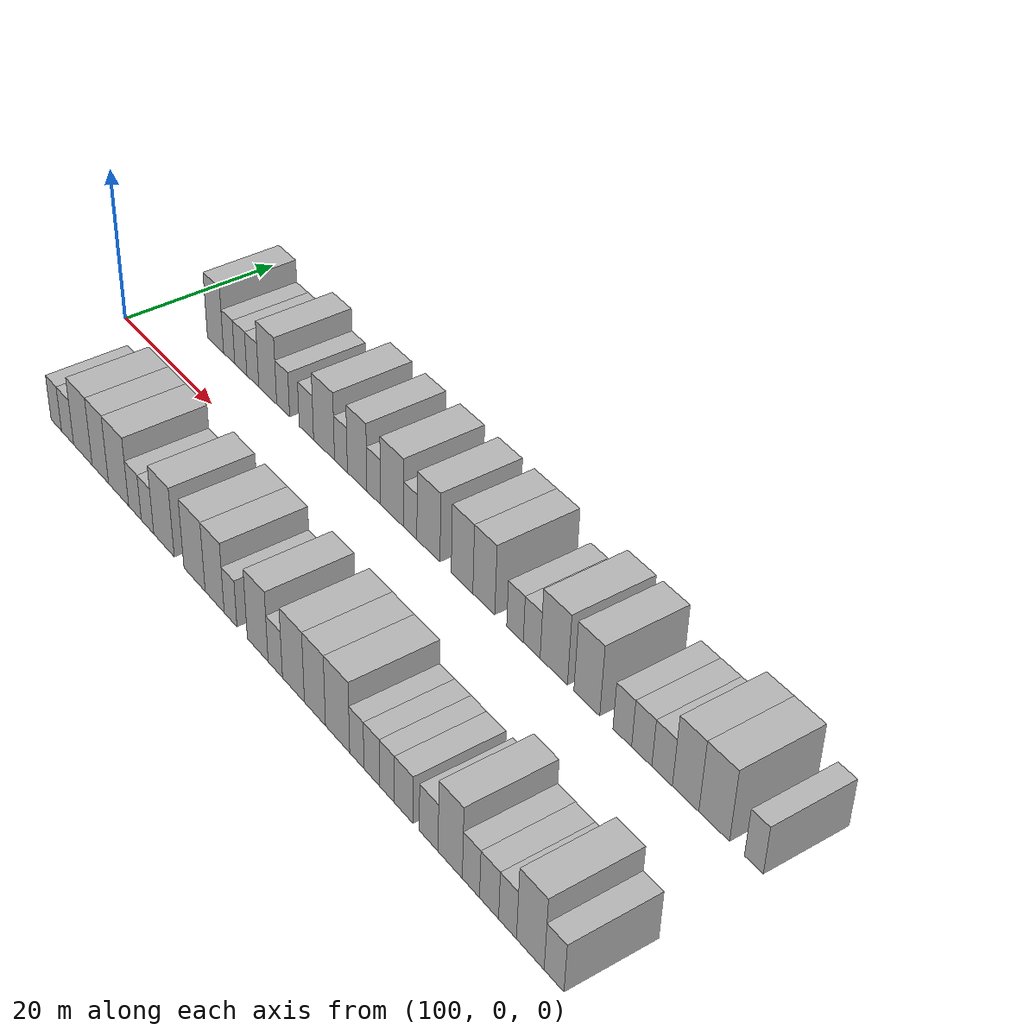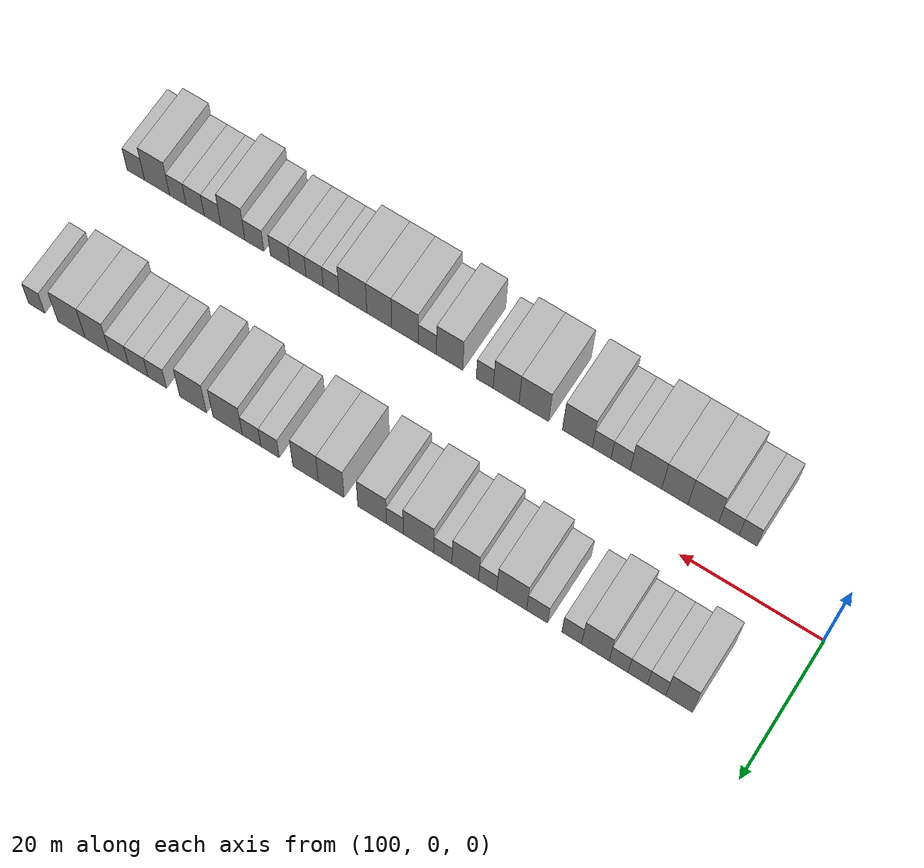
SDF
<sdf version="1.6">
 <world name="default">
  <model name="building_27">
   <static>1</static>
   <pose>110.5554 11.0000 0 0.000000 0.000000 1.570796</pose>
   <link name="link">
    <pose>0 0 4.50 0 0 0</pose>
    <collision name="collision"><geometry><box><size>10.0000 3.6886 9.0000</size></box></geometry></collision>
    <visual name="visual">
     <cast_shadows>0</cast_shadows>
     <geometry><box><size>10.0000 3.6886 9.0000</size></box></geometry>
     <material>
      <script>
       <uri>model://HANNAS_wall/materials/scripts</uri>
       <uri>model://HANNAS_wall/materials/textures</uri>
       <name>vrc/HANNAS_wall</name>
      </script>
     </material>
    </visual>
   </link>
  </model>
  <model name="building_28">
   <static>1</static>
   <pose>113.6621 11.0000 0 0.000000 0.000000 1.570796</pose>
   <link name="link">
    <pose>0 0 3.00 0 0 0</pose>
    <collision name="collision"><geometry><box><size>10.0000 2.5249 6.0000</size></box></geometry></collision>
    <visual name="visual">
     <cast_shadows>0</cast_shadows>
     <geometry><box><size>10.0000 2.5249 6.0000</size></box></geometry>
     <material>
      <script>
       <uri>model://HANNAS_wall/materials/scripts</uri>
       <uri>model://HANNAS_wall/materials/textures</uri>
       <name>vrc/HANNAS_wall</name>
      </script>
     </material>
    </visual>
   </link>
  </model>
  <model name="building_29">
   <static>1</static>
   <pose>116.2652 11.0000 0 0.000000 0.000000 1.570796</pose>
   <link name="link">
    <pose>0 0 3.00 0 0 0</pose>
    <collision name="collision"><geometry><box><size>10.0000 2.6814 6.0000</size></box></geometry></collision>
    <visual name="visual">
     <cast_shadows>0</cast_shadows>
     <geometry><box><size>10.0000 2.6814 6.0000</size></box></geometry>
     <material>
      <script>
       <uri>model://HANNAS_wall/materials/scripts</uri>
       <uri>model://HANNAS_wall/materials/textures</uri>
       <name>vrc/HANNAS_wall</name>
      </script>
     </material>
    </visual>
   </link>
  </model>
  <model name="building_30">
   <static>1</static>
   <pose>118.9211 11.0000 0 0.000000 0.000000 1.570796</pose>
   <link name="link">
    <pose>0 0 3.00 0 0 0</pose>
    <collision name="collision"><geometry><box><size>10.0000 2.6303 6.0000</size></box></geometry></collision>
    <visual name="visual">
     <cast_shadows>0</cast_shadows>
     <geometry><box><size>10.0000 2.6303 6.0000</size></box></geometry>
     <material>
      <script>
       <uri>model://HANNAS_wall/materials/scripts</uri>
       <uri>model://HANNAS_wall/materials/textures</uri>
       <name>vrc/HANNAS_wall</name>
      </script>
     </material>
    </visual>
   </link>
  </model>
  <model name="building_31">
   <static>1</static>
   <pose>122.1619 11.0000 0 0.000000 0.000000 1.570796</pose>
   <link name="link">
    <pose>0 0 4.50 0 0 0</pose>
    <collision name="collision"><geometry><box><size>10.0000 3.8514 9.0000</size></box></geometry></collision>
    <visual name="visual">
     <cast_shadows>0</cast_shadows>
     <geometry><box><size>10.0000 3.8514 9.0000</size></box></geometry>
     <material>
      <script>
       <uri>model://HANNAS_wall/materials/scripts</uri>
       <uri>model://HANNAS_wall/materials/textures</uri>
       <name>vrc/HANNAS_wall</name>
      </script>
     </material>
    </visual>
   </link>
  </model>
  <model name="building_32">
   <static>1</static>
   <pose>125.4590 11.0000 0 0.000000 0.000000 1.570796</pose>
   <link name="link">
    <pose>0 0 3.00 0 0 0</pose>
    <collision name="collision"><geometry><box><size>10.0000 2.7426 6.0000</size></box></geometry></collision>
    <visual name="visual">
     <cast_shadows>0</cast_shadows>
     <geometry><box><size>10.0000 2.7426 6.0000</size></box></geometry>
     <material>
      <script>
       <uri>model://HANNAS_wall/materials/scripts</uri>
       <uri>model://HANNAS_wall/materials/textures</uri>
       <name>vrc/HANNAS_wall</name>
      </script>
     </material>
    </visual>
   </link>
  </model>
  <model name="building_33">
   <static>1</static>
   <pose>130.3194 11.0000 0 0.000000 0.000000 1.570796</pose>
   <link name="link">
    <pose>0 0 3.00 0 0 0</pose>
    <collision name="collision"><geometry><box><size>10.0000 2.9783 6.0000</size></box></geometry></collision>
    <visual name="visual">
     <cast_shadows>0</cast_shadows>
     <geometry><box><size>10.0000 2.9783 6.0000</size></box></geometry>
     <material>
      <script>
       <uri>model://HANNAS_wall/materials/scripts</uri>
       <uri>model://HANNAS_wall/materials/textures</uri>
       <name>vrc/HANNAS_wall</name>
      </script>
     </material>
    </visual>
   </link>
  </model>
  <model name="building_34">
   <static>1</static>
   <pose>133.9288 11.0000 0 0.000000 0.000000 1.570796</pose>
   <link name="link">
    <pose>0 0 4.50 0 0 0</pose>
    <collision name="collision"><geometry><box><size>10.0000 4.2404 9.0000</size></box></geometry></collision>
    <visual name="visual">
     <cast_shadows>0</cast_shadows>
     <geometry><box><size>10.0000 4.2404 9.0000</size></box></geometry>
     <material>
      <script>
       <uri>model://HANNAS_wall/materials/scripts</uri>
       <uri>model://HANNAS_wall/materials/textures</uri>
       <name>vrc/HANNAS_wall</name>
      </script>
     </material>
    </visual>
   </link>
  </model>
  <model name="building_35">
   <static>1</static>
   <pose>137.3306 11.0000 0 0.000000 0.000000 1.570796</pose>
   <link name="link">
    <pose>0 0 3.00 0 0 0</pose>
    <collision name="collision"><geometry><box><size>10.0000 2.5633 6.0000</size></box></geometry></collision>
    <visual name="visual">
     <cast_shadows>0</cast_shadows>
     <geometry><box><size>10.0000 2.5633 6.0000</size></box></geometry>
     <material>
      <script>
       <uri>model://HANNAS_wall/materials/scripts</uri>
       <uri>model://HANNAS_wall/materials/textures</uri>
       <name>vrc/HANNAS_wall</name>
      </script>
     </material>
    </visual>
   </link>
  </model>
  <model name="building_36">
   <static>1</static>
   <pose>140.5159 11.0000 0 0.000000 0.000000 1.570796</pose>
   <link name="link">
    <pose>0 0 4.50 0 0 0</pose>
    <collision name="collision"><geometry><box><size>10.0000 3.8072 9.0000</size></box></geometry></collision>
    <visual name="visual">
     <cast_shadows>0</cast_shadows>
     <geometry><box><size>10.0000 3.8072 9.0000</size></box></geometry>
     <material>
      <script>
       <uri>model://HANNAS_wall/materials/scripts</uri>
       <uri>model://HANNAS_wall/materials/textures</uri>
       <name>vrc/HANNAS_wall</name>
      </script>
     </material>
    </visual>
   </link>
  </model>
  <model name="building_37">
   <static>1</static>
   <pose>143.7232 11.0000 0 0.000000 0.000000 1.570796</pose>
   <link name="link">
    <pose>0 0 3.00 0 0 0</pose>
    <collision name="collision"><geometry><box><size>10.0000 2.6073 6.0000</size></box></geometry></collision>
    <visual name="visual">
     <cast_shadows>0</cast_shadows>
     <geometry><box><size>10.0000 2.6073 6.0000</size></box></geometry>
     <material>
      <script>
       <uri>model://HANNAS_wall/materials/scripts</uri>
       <uri>model://HANNAS_wall/materials/textures</uri>
       <name>vrc/HANNAS_wall</name>
      </script>
     </material>
    </visual>
   </link>
  </model>
  <model name="building_38">
   <static>1</static>
   <pose>147.2224 11.0000 0 0.000000 0.000000 1.570796</pose>
   <link name="link">
    <pose>0 0 4.50 0 0 0</pose>
    <collision name="collision"><geometry><box><size>10.0000 4.3911 9.0000</size></box></geometry></collision>
    <visual name="visual">
     <cast_shadows>0</cast_shadows>
     <geometry><box><size>10.0000 4.3911 9.0000</size></box></geometry>
     <material>
      <script>
       <uri>model://HANNAS_wall/materials/scripts</uri>
       <uri>model://HANNAS_wall/materials/textures</uri>
       <name>vrc/HANNAS_wall</name>
      </script>
     </material>
    </visual>
   </link>
  </model>
  <model name="building_39">
   <static>1</static>
   <pose>150.6254 11.0000 0 0.000000 0.000000 1.570796</pose>
   <link name="link">
    <pose>0 0 3.00 0 0 0</pose>
    <collision name="collision"><geometry><box><size>10.0000 2.4150 6.0000</size></box></geometry></collision>
    <visual name="visual">
     <cast_shadows>0</cast_shadows>
     <geometry><box><size>10.0000 2.4150 6.0000</size></box></geometry>
     <material>
      <script>
       <uri>model://HANNAS_wall/materials/scripts</uri>
       <uri>model://HANNAS_wall/materials/textures</uri>
       <name>vrc/HANNAS_wall</name>
      </script>
     </material>
    </visual>
   </link>
  </model>
  <model name="building_40">
   <static>1</static>
   <pose>153.9231 11.0000 0 0.000000 0.000000 1.570796</pose>
   <link name="link">
    <pose>0 0 4.50 0 0 0</pose>
    <collision name="collision"><geometry><box><size>10.0000 4.1804 9.0000</size></box></geometry></collision>
    <visual name="visual">
     <cast_shadows>0</cast_shadows>
     <geometry><box><size>10.0000 4.1804 9.0000</size></box></geometry>
     <material>
      <script>
       <uri>model://HANNAS_wall/materials/scripts</uri>
       <uri>model://HANNAS_wall/materials/textures</uri>
       <name>vrc/HANNAS_wall</name>
      </script>
     </material>
    </visual>
   </link>
  </model>
  <model name="building_41">
   <static>1</static>
   <pose>159.9010 11.0000 0 0.000000 0.000000 1.570796</pose>
   <link name="link">
    <pose>0 0 4.50 0 0 0</pose>
    <collision name="collision"><geometry><box><size>10.0000 3.7754 9.0000</size></box></geometry></collision>
    <visual name="visual">
     <cast_shadows>0</cast_shadows>
     <geometry><box><size>10.0000 3.7754 9.0000</size></box></geometry>
     <material>
      <script>
       <uri>model://HANNAS_wall/materials/scripts</uri>
       <uri>model://HANNAS_wall/materials/textures</uri>
       <name>vrc/HANNAS_wall</name>
      </script>
     </material>
    </visual>
   </link>
  </model>
  <model name="building_42">
   <static>1</static>
   <pose>163.6696 11.0000 0 0.000000 0.000000 1.570796</pose>
   <link name="link">
    <pose>0 0 4.50 0 0 0</pose>
    <collision name="collision"><geometry><box><size>10.0000 3.7619 9.0000</size></box></geometry></collision>
    <visual name="visual">
     <cast_shadows>0</cast_shadows>
     <geometry><box><size>10.0000 3.7619 9.0000</size></box></geometry>
     <material>
      <script>
       <uri>model://HANNAS_wall/materials/scripts</uri>
       <uri>model://HANNAS_wall/materials/textures</uri>
       <name>vrc/HANNAS_wall</name>
      </script>
     </material>
    </visual>
   </link>
  </model>
  <model name="building_43">
   <static>1</static>
   <pose>168.9229 11.0000 0 0.000000 0.000000 1.570796</pose>
   <link name="link">
    <pose>0 0 3.00 0 0 0</pose>
    <collision name="collision"><geometry><box><size>10.0000 2.7446 6.0000</size></box></geometry></collision>
    <visual name="visual">
     <cast_shadows>0</cast_shadows>
     <geometry><box><size>10.0000 2.7446 6.0000</size></box></geometry>
     <material>
      <script>
       <uri>model://HANNAS_wall/materials/scripts</uri>
       <uri>model://HANNAS_wall/materials/textures</uri>
       <name>vrc/HANNAS_wall</name>
      </script>
     </material>
    </visual>
   </link>
  </model>
  <model name="building_44">
   <static>1</static>
   <pose>171.6702 11.0000 0 0.000000 0.000000 1.570796</pose>
   <link name="link">
    <pose>0 0 3.00 0 0 0</pose>
    <collision name="collision"><geometry><box><size>10.0000 2.7500 6.0000</size></box></geometry></collision>
    <visual name="visual">
     <cast_shadows>0</cast_shadows>
     <geometry><box><size>10.0000 2.7500 6.0000</size></box></geometry>
     <material>
      <script>
       <uri>model://HANNAS_wall/materials/scripts</uri>
       <uri>model://HANNAS_wall/materials/textures</uri>
       <name>vrc/HANNAS_wall</name>
      </script>
     </material>
    </visual>
   </link>
  </model>
  <model name="building_45">
   <static>1</static>
   <pose>175.2287 11.0000 0 0.000000 0.000000 1.570796</pose>
   <link name="link">
    <pose>0 0 4.50 0 0 0</pose>
    <collision name="collision"><geometry><box><size>10.0000 4.3669 9.0000</size></box></geometry></collision>
    <visual name="visual">
     <cast_shadows>0</cast_shadows>
     <geometry><box><size>10.0000 4.3669 9.0000</size></box></geometry>
     <material>
      <script>
       <uri>model://HANNAS_wall/materials/scripts</uri>
       <uri>model://HANNAS_wall/materials/textures</uri>
       <name>vrc/HANNAS_wall</name>
      </script>
     </material>
    </visual>
   </link>
  </model>
  <model name="building_46">
   <static>1</static>
   <pose>180.4132 11.0000 0 0.000000 0.000000 1.570796</pose>
   <link name="link">
    <pose>0 0 4.50 0 0 0</pose>
    <collision name="collision"><geometry><box><size>10.0000 4.0022 9.0000</size></box></geometry></collision>
    <visual name="visual">
     <cast_shadows>0</cast_shadows>
     <geometry><box><size>10.0000 4.0022 9.0000</size></box></geometry>
     <material>
      <script>
       <uri>model://HANNAS_wall/materials/scripts</uri>
       <uri>model://HANNAS_wall/materials/textures</uri>
       <name>vrc/HANNAS_wall</name>
      </script>
     </material>
    </visual>
   </link>
  </model>
  <model name="building_47">
   <static>1</static>
   <pose>185.8113 11.0000 0 0.000000 0.000000 1.570796</pose>
   <link name="link">
    <pose>0 0 3.00 0 0 0</pose>
    <collision name="collision"><geometry><box><size>10.0000 2.7940 6.0000</size></box></geometry></collision>
    <visual name="visual">
     <cast_shadows>0</cast_shadows>
     <geometry><box><size>10.0000 2.7940 6.0000</size></box></geometry>
     <material>
      <script>
       <uri>model://HANNAS_wall/materials/scripts</uri>
       <uri>model://HANNAS_wall/materials/textures</uri>
       <name>vrc/HANNAS_wall</name>
      </script>
     </material>
    </visual>
   </link>
  </model>
  <model name="building_48">
   <static>1</static>
   <pose>188.6887 11.0000 0 0.000000 0.000000 1.570796</pose>
   <link name="link">
    <pose>0 0 3.00 0 0 0</pose>
    <collision name="collision"><geometry><box><size>10.0000 2.9608 6.0000</size></box></geometry></collision>
    <visual name="visual">
     <cast_shadows>0</cast_shadows>
     <geometry><box><size>10.0000 2.9608 6.0000</size></box></geometry>
     <material>
      <script>
       <uri>model://HANNAS_wall/materials/scripts</uri>
       <uri>model://HANNAS_wall/materials/textures</uri>
       <name>vrc/HANNAS_wall</name>
      </script>
     </material>
    </visual>
   </link>
  </model>
  <model name="building_49">
   <static>1</static>
   <pose>191.6474 11.0000 0 0.000000 0.000000 1.570796</pose>
   <link name="link">
    <pose>0 0 3.00 0 0 0</pose>
    <collision name="collision"><geometry><box><size>10.0000 2.9565 6.0000</size></box></geometry></collision>
    <visual name="visual">
     <cast_shadows>0</cast_shadows>
     <geometry><box><size>10.0000 2.9565 6.0000</size></box></geometry>
     <material>
      <script>
       <uri>model://HANNAS_wall/materials/scripts</uri>
       <uri>model://HANNAS_wall/materials/textures</uri>
       <name>vrc/HANNAS_wall</name>
      </script>
     </material>
    </visual>
   </link>
  </model>
  <model name="building_50">
   <static>1</static>
   <pose>194.9856 11.0000 0 0.000000 0.000000 1.570796</pose>
   <link name="link">
    <pose>0 0 4.50 0 0 0</pose>
    <collision name="collision"><geometry><box><size>10.0000 3.7198 9.0000</size></box></geometry></collision>
    <visual name="visual">
     <cast_shadows>0</cast_shadows>
     <geometry><box><size>10.0000 3.7198 9.0000</size></box></geometry>
     <material>
      <script>
       <uri>model://HANNAS_wall/materials/scripts</uri>
       <uri>model://HANNAS_wall/materials/textures</uri>
       <name>vrc/HANNAS_wall</name>
      </script>
     </material>
    </visual>
   </link>
  </model>
  <model name="building_51">
   <static>1</static>
   <pose>198.9587 11.0000 0 0.000000 0.000000 1.570796</pose>
   <link name="link">
    <pose>0 0 4.50 0 0 0</pose>
    <collision name="collision"><geometry><box><size>10.0000 4.2264 9.0000</size></box></geometry></collision>
    <visual name="visual">
     <cast_shadows>0</cast_shadows>
     <geometry><box><size>10.0000 4.2264 9.0000</size></box></geometry>
     <material>
      <script>
       <uri>model://HANNAS_wall/materials/scripts</uri>
       <uri>model://HANNAS_wall/materials/textures</uri>
       <name>vrc/HANNAS_wall</name>
      </script>
     </material>
    </visual>
   </link>
  </model>
  <model name="building_52">
   <static>1</static>
   <pose>204.3244 11.0000 0 0.000000 0.000000 1.570796</pose>
   <link name="link">
    <pose>0 0 3.00 0 0 0</pose>
    <collision name="collision"><geometry><box><size>10.0000 2.5050 6.0000</size></box></geometry></collision>
    <visual name="visual">
     <cast_shadows>0</cast_shadows>
     <geometry><box><size>10.0000 2.5050 6.0000</size></box></geometry>
     <material>
      <script>
       <uri>model://HANNAS_wall/materials/scripts</uri>
       <uri>model://HANNAS_wall/materials/textures</uri>
       <name>vrc/HANNAS_wall</name>
      </script>
     </material>
    </visual>
   </link>
  </model>
  <model name="building_79">
   <static>1</static>
   <pose>113.8995 -11.0000 0 0.000000 0.000000 1.570796</pose>
   <link name="link">
    <pose>0 0 3.00 0 0 0</pose>
    <collision name="collision"><geometry><box><size>10.0000 2.5230 6.0000</size></box></geometry></collision>
    <visual name="visual">
     <cast_shadows>0</cast_shadows>
     <geometry><box><size>10.0000 2.5230 6.0000</size></box></geometry>
     <material>
      <script>
       <uri>model://HANNAS_wall/materials/scripts</uri>
       <uri>model://HANNAS_wall/materials/textures</uri>
       <name>vrc/HANNAS_wall</name>
      </script>
     </material>
    </visual>
   </link>
  </model>
  <model name="building_80">
   <static>1</static>
   <pose>116.6050 -11.0000 0 0.000000 0.000000 1.570796</pose>
   <link name="link">
    <pose>0 0 3.00 0 0 0</pose>
    <collision name="collision"><geometry><box><size>10.0000 2.8881 6.0000</size></box></geometry></collision>
    <visual name="visual">
     <cast_shadows>0</cast_shadows>
     <geometry><box><size>10.0000 2.8881 6.0000</size></box></geometry>
     <material>
      <script>
       <uri>model://HANNAS_wall/materials/scripts</uri>
       <uri>model://HANNAS_wall/materials/textures</uri>
       <name>vrc/HANNAS_wall</name>
      </script>
     </material>
    </visual>
   </link>
  </model>
  <model name="building_81">
   <static>1</static>
   <pose>120.2072 -11.0000 0 0.000000 0.000000 1.570796</pose>
   <link name="link">
    <pose>0 0 4.50 0 0 0</pose>
    <collision name="collision"><geometry><box><size>10.0000 4.3162 9.0000</size></box></geometry></collision>
    <visual name="visual">
     <cast_shadows>0</cast_shadows>
     <geometry><box><size>10.0000 4.3162 9.0000</size></box></geometry>
     <material>
      <script>
       <uri>model://HANNAS_wall/materials/scripts</uri>
       <uri>model://HANNAS_wall/materials/textures</uri>
       <name>vrc/HANNAS_wall</name>
      </script>
     </material>
    </visual>
   </link>
  </model>
  <model name="building_82">
   <static>1</static>
   <pose>124.2282 -11.0000 0 0.000000 0.000000 1.570796</pose>
   <link name="link">
    <pose>0 0 4.50 0 0 0</pose>
    <collision name="collision"><geometry><box><size>10.0000 3.7258 9.0000</size></box></geometry></collision>
    <visual name="visual">
     <cast_shadows>0</cast_shadows>
     <geometry><box><size>10.0000 3.7258 9.0000</size></box></geometry>
     <material>
      <script>
       <uri>model://HANNAS_wall/materials/scripts</uri>
       <uri>model://HANNAS_wall/materials/textures</uri>
       <name>vrc/HANNAS_wall</name>
      </script>
     </material>
    </visual>
   </link>
  </model>
  <model name="building_83">
   <static>1</static>
   <pose>128.3402 -11.0000 0 0.000000 0.000000 1.570796</pose>
   <link name="link">
    <pose>0 0 4.50 0 0 0</pose>
    <collision name="collision"><geometry><box><size>10.0000 4.4983 9.0000</size></box></geometry></collision>
    <visual name="visual">
     <cast_shadows>0</cast_shadows>
     <geometry><box><size>10.0000 4.4983 9.0000</size></box></geometry>
     <material>
      <script>
       <uri>model://HANNAS_wall/materials/scripts</uri>
       <uri>model://HANNAS_wall/materials/textures</uri>
       <name>vrc/HANNAS_wall</name>
      </script>
     </material>
    </visual>
   </link>
  </model>
  <model name="building_84">
   <static>1</static>
   <pose>131.9676 -11.0000 0 0.000000 0.000000 1.570796</pose>
   <link name="link">
    <pose>0 0 3.00 0 0 0</pose>
    <collision name="collision"><geometry><box><size>10.0000 2.7565 6.0000</size></box></geometry></collision>
    <visual name="visual">
     <cast_shadows>0</cast_shadows>
     <geometry><box><size>10.0000 2.7565 6.0000</size></box></geometry>
     <material>
      <script>
       <uri>model://HANNAS_wall/materials/scripts</uri>
       <uri>model://HANNAS_wall/materials/textures</uri>
       <name>vrc/HANNAS_wall</name>
      </script>
     </material>
    </visual>
   </link>
  </model>
  <model name="building_85">
   <static>1</static>
   <pose>134.6800 -11.0000 0 0.000000 0.000000 1.570796</pose>
   <link name="link">
    <pose>0 0 3.00 0 0 0</pose>
    <collision name="collision"><geometry><box><size>10.0000 2.6683 6.0000</size></box></geometry></collision>
    <visual name="visual">
     <cast_shadows>0</cast_shadows>
     <geometry><box><size>10.0000 2.6683 6.0000</size></box></geometry>
     <material>
      <script>
       <uri>model://HANNAS_wall/materials/scripts</uri>
       <uri>model://HANNAS_wall/materials/textures</uri>
       <name>vrc/HANNAS_wall</name>
      </script>
     </material>
    </visual>
   </link>
  </model>
  <model name="building_86">
   <static>1</static>
   <pose>138.1744 -11.0000 0 0.000000 0.000000 1.570796</pose>
   <link name="link">
    <pose>0 0 4.50 0 0 0</pose>
    <collision name="collision"><geometry><box><size>10.0000 4.3205 9.0000</size></box></geometry></collision>
    <visual name="visual">
     <cast_shadows>0</cast_shadows>
     <geometry><box><size>10.0000 4.3205 9.0000</size></box></geometry>
     <material>
      <script>
       <uri>model://HANNAS_wall/materials/scripts</uri>
       <uri>model://HANNAS_wall/materials/textures</uri>
       <name>vrc/HANNAS_wall</name>
      </script>
     </material>
    </visual>
   </link>
  </model>
  <model name="building_87">
   <static>1</static>
   <pose>144.4950 -11.0000 0 0.000000 0.000000 1.570796</pose>
   <link name="link">
    <pose>0 0 4.50 0 0 0</pose>
    <collision name="collision"><geometry><box><size>10.0000 4.3208 9.0000</size></box></geometry></collision>
    <visual name="visual">
     <cast_shadows>0</cast_shadows>
     <geometry><box><size>10.0000 4.3208 9.0000</size></box></geometry>
     <material>
      <script>
       <uri>model://HANNAS_wall/materials/scripts</uri>
       <uri>model://HANNAS_wall/materials/textures</uri>
       <name>vrc/HANNAS_wall</name>
      </script>
     </material>
    </visual>
   </link>
  </model>
  <model name="building_88">
   <static>1</static>
   <pose>148.5421 -11.0000 0 0.000000 0.000000 1.570796</pose>
   <link name="link">
    <pose>0 0 4.50 0 0 0</pose>
    <collision name="collision"><geometry><box><size>10.0000 3.7734 9.0000</size></box></geometry></collision>
    <visual name="visual">
     <cast_shadows>0</cast_shadows>
     <geometry><box><size>10.0000 3.7734 9.0000</size></box></geometry>
     <material>
      <script>
       <uri>model://HANNAS_wall/materials/scripts</uri>
       <uri>model://HANNAS_wall/materials/textures</uri>
       <name>vrc/HANNAS_wall</name>
      </script>
     </material>
    </visual>
   </link>
  </model>
  <model name="building_89">
   <static>1</static>
   <pose>151.6659 -11.0000 0 0.000000 0.000000 1.570796</pose>
   <link name="link">
    <pose>0 0 3.00 0 0 0</pose>
    <collision name="collision"><geometry><box><size>10.0000 2.4741 6.0000</size></box></geometry></collision>
    <visual name="visual">
     <cast_shadows>0</cast_shadows>
     <geometry><box><size>10.0000 2.4741 6.0000</size></box></geometry>
     <material>
      <script>
       <uri>model://HANNAS_wall/materials/scripts</uri>
       <uri>model://HANNAS_wall/materials/textures</uri>
       <name>vrc/HANNAS_wall</name>
      </script>
     </material>
    </visual>
   </link>
  </model>
  <model name="building_90">
   <static>1</static>
   <pose>156.8621 -11.0000 0 0.000000 0.000000 1.570796</pose>
   <link name="link">
    <pose>0 0 4.50 0 0 0</pose>
    <collision name="collision"><geometry><box><size>10.0000 3.9183 9.0000</size></box></geometry></collision>
    <visual name="visual">
     <cast_shadows>0</cast_shadows>
     <geometry><box><size>10.0000 3.9183 9.0000</size></box></geometry>
     <material>
      <script>
       <uri>model://HANNAS_wall/materials/scripts</uri>
       <uri>model://HANNAS_wall/materials/textures</uri>
       <name>vrc/HANNAS_wall</name>
      </script>
     </material>
    </visual>
   </link>
  </model>
  <model name="building_91">
   <static>1</static>
   <pose>160.1510 -11.0000 0 0.000000 0.000000 1.570796</pose>
   <link name="link">
    <pose>0 0 3.00 0 0 0</pose>
    <collision name="collision"><geometry><box><size>10.0000 2.6596 6.0000</size></box></geometry></collision>
    <visual name="visual">
     <cast_shadows>0</cast_shadows>
     <geometry><box><size>10.0000 2.6596 6.0000</size></box></geometry>
     <material>
      <script>
       <uri>model://HANNAS_wall/materials/scripts</uri>
       <uri>model://HANNAS_wall/materials/textures</uri>
       <name>vrc/HANNAS_wall</name>
      </script>
     </material>
    </visual>
   </link>
  </model>
  <model name="building_92">
   <static>1</static>
   <pose>163.4707 -11.0000 0 0.000000 0.000000 1.570796</pose>
   <link name="link">
    <pose>0 0 4.50 0 0 0</pose>
    <collision name="collision"><geometry><box><size>10.0000 3.9797 9.0000</size></box></geometry></collision>
    <visual name="visual">
     <cast_shadows>0</cast_shadows>
     <geometry><box><size>10.0000 3.9797 9.0000</size></box></geometry>
     <material>
      <script>
       <uri>model://HANNAS_wall/materials/scripts</uri>
       <uri>model://HANNAS_wall/materials/textures</uri>
       <name>vrc/HANNAS_wall</name>
      </script>
     </material>
    </visual>
   </link>
  </model>
  <model name="building_93">
   <static>1</static>
   <pose>167.3234 -11.0000 0 0.000000 0.000000 1.570796</pose>
   <link name="link">
    <pose>0 0 4.50 0 0 0</pose>
    <collision name="collision"><geometry><box><size>10.0000 3.7257 9.0000</size></box></geometry></collision>
    <visual name="visual">
     <cast_shadows>0</cast_shadows>
     <geometry><box><size>10.0000 3.7257 9.0000</size></box></geometry>
     <material>
      <script>
       <uri>model://HANNAS_wall/materials/scripts</uri>
       <uri>model://HANNAS_wall/materials/textures</uri>
       <name>vrc/HANNAS_wall</name>
      </script>
     </material>
    </visual>
   </link>
  </model>
  <model name="building_94">
   <static>1</static>
   <pose>171.2731 -11.0000 0 0.000000 0.000000 1.570796</pose>
   <link name="link">
    <pose>0 0 4.50 0 0 0</pose>
    <collision name="collision"><geometry><box><size>10.0000 4.1737 9.0000</size></box></geometry></collision>
    <visual name="visual">
     <cast_shadows>0</cast_shadows>
     <geometry><box><size>10.0000 4.1737 9.0000</size></box></geometry>
     <material>
      <script>
       <uri>model://HANNAS_wall/materials/scripts</uri>
       <uri>model://HANNAS_wall/materials/textures</uri>
       <name>vrc/HANNAS_wall</name>
      </script>
     </material>
    </visual>
   </link>
  </model>
  <model name="building_95">
   <static>1</static>
   <pose>174.5662 -11.0000 0 0.000000 0.000000 1.570796</pose>
   <link name="link">
    <pose>0 0 3.00 0 0 0</pose>
    <collision name="collision"><geometry><box><size>10.0000 2.4125 6.0000</size></box></geometry></collision>
    <visual name="visual">
     <cast_shadows>0</cast_shadows>
     <geometry><box><size>10.0000 2.4125 6.0000</size></box></geometry>
     <material>
      <script>
       <uri>model://HANNAS_wall/materials/scripts</uri>
       <uri>model://HANNAS_wall/materials/textures</uri>
       <name>vrc/HANNAS_wall</name>
      </script>
     </material>
    </visual>
   </link>
  </model>
  <model name="building_96">
   <static>1</static>
   <pose>177.0694 -11.0000 0 0.000000 0.000000 1.570796</pose>
   <link name="link">
    <pose>0 0 3.00 0 0 0</pose>
    <collision name="collision"><geometry><box><size>10.0000 2.5940 6.0000</size></box></geometry></collision>
    <visual name="visual">
     <cast_shadows>0</cast_shadows>
     <geometry><box><size>10.0000 2.5940 6.0000</size></box></geometry>
     <material>
      <script>
       <uri>model://HANNAS_wall/materials/scripts</uri>
       <uri>model://HANNAS_wall/materials/textures</uri>
       <name>vrc/HANNAS_wall</name>
      </script>
     </material>
    </visual>
   </link>
  </model>
  <model name="building_97">
   <static>1</static>
   <pose>179.5874 -11.0000 0 0.000000 0.000000 1.570796</pose>
   <link name="link">
    <pose>0 0 3.00 0 0 0</pose>
    <collision name="collision"><geometry><box><size>10.0000 2.4421 6.0000</size></box></geometry></collision>
    <visual name="visual">
     <cast_shadows>0</cast_shadows>
     <geometry><box><size>10.0000 2.4421 6.0000</size></box></geometry>
     <material>
      <script>
       <uri>model://HANNAS_wall/materials/scripts</uri>
       <uri>model://HANNAS_wall/materials/textures</uri>
       <name>vrc/HANNAS_wall</name>
      </script>
     </material>
    </visual>
   </link>
  </model>
  <model name="building_98">
   <static>1</static>
   <pose>182.3002 -11.0000 0 0.000000 0.000000 1.570796</pose>
   <link name="link">
    <pose>0 0 3.00 0 0 0</pose>
    <collision name="collision"><geometry><box><size>10.0000 2.9835 6.0000</size></box></geometry></collision>
    <visual name="visual">
     <cast_shadows>0</cast_shadows>
     <geometry><box><size>10.0000 2.9835 6.0000</size></box></geometry>
     <material>
      <script>
       <uri>model://HANNAS_wall/materials/scripts</uri>
       <uri>model://HANNAS_wall/materials/textures</uri>
       <name>vrc/HANNAS_wall</name>
      </script>
     </material>
    </visual>
   </link>
  </model>
  <model name="building_99">
   <static>1</static>
   <pose>186.2542 -11.0000 0 0.000000 0.000000 1.570796</pose>
   <link name="link">
    <pose>0 0 3.00 0 0 0</pose>
    <collision name="collision"><geometry><box><size>10.0000 2.9245 6.0000</size></box></geometry></collision>
    <visual name="visual">
     <cast_shadows>0</cast_shadows>
     <geometry><box><size>10.0000 2.9245 6.0000</size></box></geometry>
     <material>
      <script>
       <uri>model://HANNAS_wall/materials/scripts</uri>
       <uri>model://HANNAS_wall/materials/textures</uri>
       <name>vrc/HANNAS_wall</name>
      </script>
     </material>
    </visual>
   </link>
  </model>
  <model name="building_100">
   <static>1</static>
   <pose>189.5695 -11.0000 0 0.000000 0.000000 1.570796</pose>
   <link name="link">
    <pose>0 0 4.50 0 0 0</pose>
    <collision name="collision"><geometry><box><size>10.0000 3.7061 9.0000</size></box></geometry></collision>
    <visual name="visual">
     <cast_shadows>0</cast_shadows>
     <geometry><box><size>10.0000 3.7061 9.0000</size></box></geometry>
     <material>
      <script>
       <uri>model://HANNAS_wall/materials/scripts</uri>
       <uri>model://HANNAS_wall/materials/textures</uri>
       <name>vrc/HANNAS_wall</name>
      </script>
     </material>
    </visual>
   </link>
  </model>
  <model name="building_101">
   <static>1</static>
   <pose>192.7112 -11.0000 0 0.000000 0.000000 1.570796</pose>
   <link name="link">
    <pose>0 0 3.00 0 0 0</pose>
    <collision name="collision"><geometry><box><size>10.0000 2.5771 6.0000</size></box></geometry></collision>
    <visual name="visual">
     <cast_shadows>0</cast_shadows>
     <geometry><box><size>10.0000 2.5771 6.0000</size></box></geometry>
     <material>
      <script>
       <uri>model://HANNAS_wall/materials/scripts</uri>
       <uri>model://HANNAS_wall/materials/textures</uri>
       <name>vrc/HANNAS_wall</name>
      </script>
     </material>
    </visual>
   </link>
  </model>
  <model name="building_102">
   <static>1</static>
   <pose>195.3997 -11.0000 0 0.000000 0.000000 1.570796</pose>
   <link name="link">
    <pose>0 0 3.00 0 0 0</pose>
    <collision name="collision"><geometry><box><size>10.0000 2.7998 6.0000</size></box></geometry></collision>
    <visual name="visual">
     <cast_shadows>0</cast_shadows>
     <geometry><box><size>10.0000 2.7998 6.0000</size></box></geometry>
     <material>
      <script>
       <uri>model://HANNAS_wall/materials/scripts</uri>
       <uri>model://HANNAS_wall/materials/textures</uri>
       <name>vrc/HANNAS_wall</name>
      </script>
     </material>
    </visual>
   </link>
  </model>
  <model name="building_103">
   <static>1</static>
   <pose>198.0893 -11.0000 0 0.000000 0.000000 1.570796</pose>
   <link name="link">
    <pose>0 0 3.00 0 0 0</pose>
    <collision name="collision"><geometry><box><size>10.0000 2.5795 6.0000</size></box></geometry></collision>
    <visual name="visual">
     <cast_shadows>0</cast_shadows>
     <geometry><box><size>10.0000 2.5795 6.0000</size></box></geometry>
     <material>
      <script>
       <uri>model://HANNAS_wall/materials/scripts</uri>
       <uri>model://HANNAS_wall/materials/textures</uri>
       <name>vrc/HANNAS_wall</name>
      </script>
     </material>
    </visual>
   </link>
  </model>
  <model name="building_104">
   <static>1</static>
   <pose>201.3373 -11.0000 0 0.000000 0.000000 1.570796</pose>
   <link name="link">
    <pose>0 0 4.50 0 0 0</pose>
    <collision name="collision"><geometry><box><size>10.0000 3.9165 9.0000</size></box></geometry></collision>
    <visual name="visual">
     <cast_shadows>0</cast_shadows>
     <geometry><box><size>10.0000 3.9165 9.0000</size></box></geometry>
     <material>
      <script>
       <uri>model://HANNAS_wall/materials/scripts</uri>
       <uri>model://HANNAS_wall/materials/textures</uri>
       <name>vrc/HANNAS_wall</name>
      </script>
     </material>
    </visual>
   </link>
  </model>
  <model name="building_105">
   <static>1</static>
   <pose>204.6656 -11.0000 0 0.000000 0.000000 1.570796</pose>
   <link name="link">
    <pose>0 0 3.00 0 0 0</pose>
    <collision name="collision"><geometry><box><size>10.0000 2.7399 6.0000</size></box></geometry></collision>
    <visual name="visual">
     <cast_shadows>0</cast_shadows>
     <geometry><box><size>10.0000 2.7399 6.0000</size></box></geometry>
     <material>
      <script>
       <uri>model://HANNAS_wall/materials/scripts</uri>
       <uri>model://HANNAS_wall/materials/textures</uri>
       <name>vrc/HANNAS_wall</name>
      </script>
     </material>
    </visual>
   </link>
  </model>
 </world>
</sdf>
